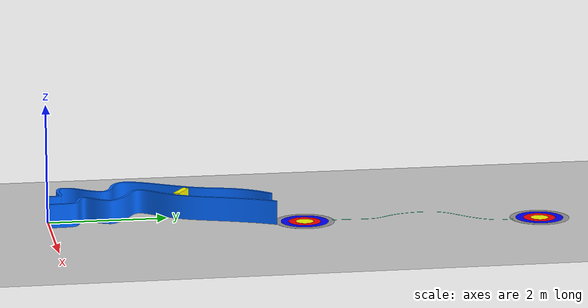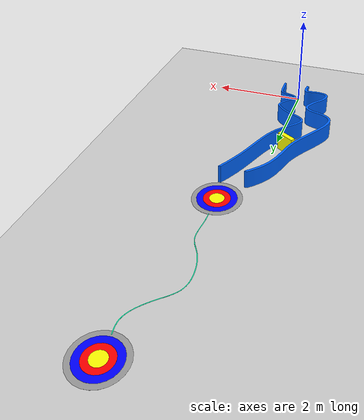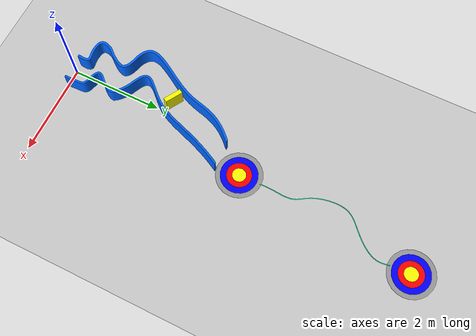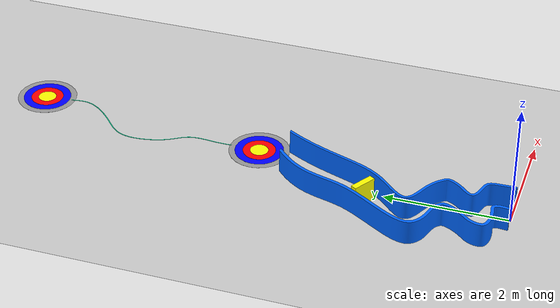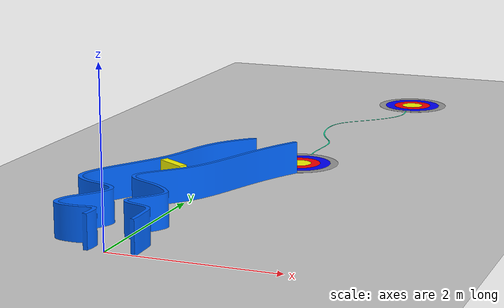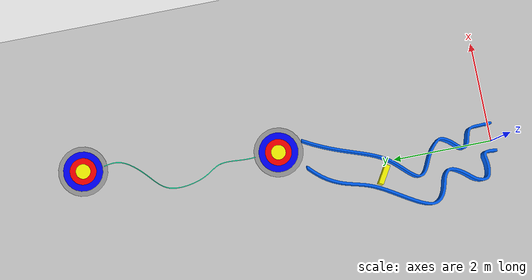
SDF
<sdf version="1.7">
 <world name="default">
  <light name="sun" type="directional">
   <pose>0 0 10 0 -0 0</pose>
   <diffuse>0.8 0.8 0.8 1</diffuse>
   <specular>0.2 0.2 0.2 1</specular>
   <attenuation>
    <range>1000</range>
    <constant>0.9</constant>
    <linear>0.01</linear>
    <quadratic>0.001</quadratic>
   </attenuation>
   <direction>-0.5 0.1 -0.9</direction>
   <spot><inner_angle>0</inner_angle><outer_angle>0</outer_angle><falloff>0</falloff></spot>
  </light>
  <model name="ground_plane">
   <static>1</static>
   <link name="link">
    <collision name="collision">
     <geometry><plane><normal>0 0 1</normal><size>100 100</size></plane></geometry>
     <surface><friction><ode><mu>100</mu><mu2>50</mu2></ode></friction></surface>
    </collision>
    <visual name="visual">
     <cast_shadows>0</cast_shadows>
     <geometry><plane><normal>0 0 1</normal><size>100 100</size></plane></geometry>
     <material>
      <script><uri>file://media/materials/scripts/gazebo.material</uri><name>Gazebo/Grey</name></script>
     </material>
    </visual>
   </link>
  </model>
  <gravity>0 0 -9.8</gravity>
  <magnetic_field>6e-06 2.3e-05 -4.2e-05</magnetic_field>
  <atmosphere type="adiabatic"/>
  <physics type="ode">
   <max_step_size>0.001</max_step_size>
   <real_time_factor>1</real_time_factor>
   <real_time_update_rate>1000</real_time_update_rate>
  </physics>
  <scene><ambient>0.4 0.4 0.4 1</ambient><background>0.7 0.7 0.7 1</background><shadows>1</shadows></scene>
  <spherical_coordinates>
   <surface_model>EARTH_WGS84</surface_model>
   <latitude_deg>0</latitude_deg>
   <longitude_deg>0</longitude_deg>
   <elevation>0</elevation>
   <heading_deg>0</heading_deg>
  </spherical_coordinates>
  <model name="Tunnel">
   <link name="link_0">
    <inertial>
     <mass>1</mass>
     <inertia>
      <ixx>0.166667</ixx>
      <ixy>0</ixy>
      <ixz>0</ixz>
      <iyy>0.166667</iyy>
      <iyz>0</iyz>
      <izz>0.166667</izz>
     </inertia>
    </inertial>
    <gravity>0</gravity>
    <kinematic>1</kinematic>
    <visual name="visual">
     <geometry><mesh><uri>./models/tunnel.stl</uri><scale>1 1 1</scale></mesh></geometry>
     <material>
      <lighting>1</lighting>
      <script><uri>file://media/materials/scripts/gazebo.material</uri><name>Gazebo/Grey</name></script>
      <shader type="pixel"><normal_map>__default__</normal_map></shader>
      <ambient>0 0.4 1 0</ambient>
      <diffuse>0 0.4 1 1</diffuse>
      <specular>0.01 0.01 0.01 1</specular>
      <emissive>0 0 0 1</emissive>
     </material>
    </visual>
    <collision name="collision">
     <geometry><mesh><uri>./models/tunnel.stl</uri><scale>1 1 1</scale></mesh></geometry>
     <surface>
      <friction>
       <ode><mu>1</mu><mu2>1</mu2><fdir1>0 0 0</fdir1><slip1>0</slip1><slip2>0</slip2></ode>
       <torsional>
        <coefficient>1</coefficient>
        <patch_radius>0</patch_radius>
        <surface_radius>0</surface_radius>
        <use_patch_radius>1</use_patch_radius>
        <ode><slip>0</slip></ode>
       </torsional>
      </friction>
      <bounce><restitution_coefficient>0</restitution_coefficient><threshold>1e+06</threshold></bounce>
      <contact>
       <collide_without_contact>0</collide_without_contact>
       <collide_without_contact_bitmask>1</collide_without_contact_bitmask>
       <collide_bitmask>1</collide_bitmask>
       <ode>
        <soft_cfm>0</soft_cfm>
        <soft_erp>0.2</soft_erp>
        <kp>1e+13</kp>
        <kd>1</kd>
        <max_vel>0.01</max_vel>
        <min_depth>0</min_depth>
       </ode>
       <bullet>
        <split_impulse>1</split_impulse>
        <split_impulse_penetration_threshold>-0.01</split_impulse_penetration_threshold>
        <soft_cfm>0</soft_cfm>
        <soft_erp>0.2</soft_erp>
        <kp>1e+13</kp>
        <kd>1</kd>
       </bullet>
      </contact>
     </surface>
    </collision>
   </link>
   <static>0</static>
   <pose>-1.43154 -1.49402 0 0 -0 0</pose>
  </model>
  <model name="Portail">
   <link name="link_1">
    <inertial>
     <mass>1</mass>
     <inertia>
      <ixx>0.166667</ixx>
      <ixy>0</ixy>
      <ixz>0</ixz>
      <iyy>0.166667</iyy>
      <iyz>0</iyz>
      <izz>0.166667</izz>
     </inertia>
    </inertial>
    <pose>0 -0 0 0 0 -0.274014</pose>
    <gravity>0</gravity>
    <kinematic>1</kinematic>
    <visual name="visual">
     <geometry><box><size>0.4 0.1 0.4</size></box></geometry>
     <material>
      <lighting>1</lighting>
      <script><uri>file://media/materials/scripts/gazebo.material</uri><name>Gazebo/Grey</name></script>
      <shader type="pixel"><normal_map>__default__</normal_map></shader>
      <ambient>1 1 0 1</ambient>
      <diffuse>1 1 0 1</diffuse>
      <specular>0.01 0.01 0.01 1</specular>
      <emissive>0 0 0 1</emissive>
     </material>
    </visual>
    <collision name="collision">
     <geometry><box><size>0.4 0.1 0.4</size></box></geometry>
     <surface>
      <friction>
       <ode><mu>1</mu><mu2>1</mu2><fdir1>0 0 0</fdir1><slip1>0</slip1><slip2>0</slip2></ode>
       <torsional>
        <coefficient>1</coefficient>
        <patch_radius>0</patch_radius>
        <surface_radius>0</surface_radius>
        <use_patch_radius>1</use_patch_radius>
        <ode><slip>0</slip></ode>
       </torsional>
      </friction>
      <bounce><restitution_coefficient>0</restitution_coefficient><threshold>1e+06</threshold></bounce>
      <contact>
       <collide_without_contact>0</collide_without_contact>
       <collide_without_contact_bitmask>1</collide_without_contact_bitmask>
       <collide_bitmask>1</collide_bitmask>
       <ode>
        <soft_cfm>0</soft_cfm>
        <soft_erp>0.2</soft_erp>
        <kp>1e+13</kp>
        <kd>1</kd>
        <max_vel>0.01</max_vel>
        <min_depth>0</min_depth>
       </ode>
       <bullet>
        <split_impulse>1</split_impulse>
        <split_impulse_penetration_threshold>-0.01</split_impulse_penetration_threshold>
        <soft_cfm>0</soft_cfm>
        <soft_erp>0.2</soft_erp>
        <kp>1e+13</kp>
        <kd>1</kd>
       </bullet>
      </contact>
     </surface>
    </collision>
   </link>
   <static>0</static>
   <pose>-0.258206 2.27698 0.2 0 0 -0.270185</pose>
  </model>
  <model name="Target">
   <link name="link_4">
    <inertial>
     <mass>1</mass>
     <inertia><ixx>0.145833</ixx><ixy>0</ixy><ixz>0</ixz><iyy>0.145833</iyy><iyz>0</iyz><izz>0.125</izz></inertia>
    </inertial>
    <pose>0 0 -0.00075 0 -0 0</pose>
    <gravity>0</gravity>
    <kinematic>1</kinematic>
    <visual name="visual">
     <geometry><cylinder><radius>0.5</radius><length>0.001</length></cylinder></geometry>
     <material>
      <lighting>1</lighting>
      <script><uri>file://media/materials/scripts/gazebo.material</uri><name>Gazebo/Grey</name></script>
      <shader type="pixel"><normal_map>__default__</normal_map></shader>
      <ambient>0 0 0 1</ambient>
      <diffuse>0 0 0 1</diffuse>
      <specular>0.01 0.01 0.01 1</specular>
      <emissive>0 0 0 1</emissive>
     </material>
    </visual>
   </link>
   <link name="link_4_clone">
    <inertial>
     <mass>1</mass>
     <inertia><ixx>0.145833</ixx><ixy>0</ixy><ixz>0</ixz><iyy>0.145833</iyy><iyz>0</iyz><izz>0.125</izz></inertia>
    </inertial>
    <pose>0 0 -0.00025 0 -0 0</pose>
    <gravity>0</gravity>
    <kinematic>1</kinematic>
    <visual name="visual">
     <geometry><cylinder><radius>0.4</radius><length>0.001</length></cylinder></geometry>
     <material>
      <lighting>1</lighting>
      <script><uri>file://media/materials/scripts/gazebo.material</uri><name>Gazebo/Grey</name></script>
      <shader type="pixel"><normal_map>__default__</normal_map></shader>
      <ambient>0 0 1 1</ambient>
      <diffuse>0 0 1 1</diffuse>
      <specular>0.01 0.01 0.01 1</specular>
      <emissive>0 0 0 1</emissive>
     </material>
    </visual>
   </link>
   <link name="link_4_clone_clone">
    <inertial>
     <mass>1</mass>
     <inertia><ixx>0.145833</ixx><ixy>0</ixy><ixz>0</ixz><iyy>0.145833</iyy><iyz>0</iyz><izz>0.125</izz></inertia>
    </inertial>
    <pose>0 0 0.00025 0 -0 0</pose>
    <kinematic>1</kinematic>
    <visual name="visual">
     <geometry><cylinder><radius>0.27</radius><length>0.001</length></cylinder></geometry>
     <material>
      <lighting>1</lighting>
      <script><uri>file://media/materials/scripts/gazebo.material</uri><name>Gazebo/Grey</name></script>
      <shader type="pixel"><normal_map>__default__</normal_map></shader>
      <ambient>1 0 0 1</ambient>
      <diffuse>1 0 0 1</diffuse>
      <specular>0.01 0.01 0.01 1</specular>
      <emissive>0 0 0 1</emissive>
     </material>
    </visual>
   </link>
   <link name="link_4_clone_clone_clone">
    <inertial>
     <mass>1</mass>
     <inertia><ixx>0.145833</ixx><ixy>0</ixy><ixz>0</ixz><iyy>0.145833</iyy><iyz>0</iyz><izz>0.125</izz></inertia>
    </inertial>
    <pose>0 0 0.00075 0 -0 0</pose>
    <gravity>0</gravity>
    <kinematic>1</kinematic>
    <visual name="visual">
     <geometry><cylinder><radius>0.15</radius><length>0.001</length></cylinder></geometry>
     <material>
      <lighting>1</lighting>
      <script><uri>file://media/materials/scripts/gazebo.material</uri><name>Gazebo/Grey</name></script>
      <shader type="pixel"><normal_map>__default__</normal_map></shader>
      <ambient>1 1 0 1</ambient>
      <diffuse>1 1 0 1</diffuse>
      <specular>0.01 0.01 0.01 1</specular>
      <emissive>0 0 0 1</emissive>
     </material>
    </visual>
   </link>
   <static>0</static>
   <pose>0.601737 4.24447 0 0 -0 0</pose>
  </model>
  <model name="Line">
   <link name="link_0">
    <inertial>
     <mass>1</mass>
     <inertia>
      <ixx>0.166667</ixx>
      <ixy>0</ixy>
      <ixz>0</ixz>
      <iyy>0.166667</iyy>
      <iyz>0</iyz>
      <izz>0.166667</izz>
     </inertia>
    </inertial>
    <gravity>0</gravity>
    <kinematic>1</kinematic>
    <visual name="visual">
     <geometry><mesh><uri>./models/Line1.stl</uri><scale>1 1 1</scale></mesh></geometry>
     <material>
      <lighting>1</lighting>
      <script><uri>file://media/materials/scripts/gazebo.material</uri><name>Gazebo/Grey</name></script>
      <shader type="pixel"><normal_map>__default__</normal_map></shader>
      <ambient>0 1 0.3 1</ambient>
      <diffuse>0 1 0.7 1</diffuse>
      <specular>0.01 0.01 0.01 1</specular>
      <emissive>0 0 0 1</emissive>
     </material>
    </visual>
   </link>
   <static>0</static>
   <pose>0.599519 4.71477 0 0 -0 0</pose>
  </model>
  <model name="Target_0">
   <link name="link_4">
    <inertial>
     <mass>1</mass>
     <inertia><ixx>0.145833</ixx><ixy>0</ixy><ixz>0</ixz><iyy>0.145833</iyy><iyz>0</iyz><izz>0.125</izz></inertia>
    </inertial>
    <pose>0 0 -0.00075 0 -0 0</pose>
    <gravity>0</gravity>
    <kinematic>1</kinematic>
    <visual name="visual">
     <geometry><cylinder><radius>0.5</radius><length>0.001</length></cylinder></geometry>
     <material>
      <lighting>1</lighting>
      <script><uri>file://media/materials/scripts/gazebo.material</uri><name>Gazebo/Grey</name></script>
      <shader type="pixel"><normal_map>__default__</normal_map></shader>
      <ambient>0 0 0 1</ambient>
      <diffuse>0 0 0 1</diffuse>
      <specular>0.01 0.01 0.01 1</specular>
      <emissive>0 0 0 1</emissive>
     </material>
    </visual>
   </link>
   <link name="link_4_clone">
    <inertial>
     <mass>1</mass>
     <inertia><ixx>0.145833</ixx><ixy>0</ixy><ixz>0</ixz><iyy>0.145833</iyy><iyz>0</iyz><izz>0.125</izz></inertia>
    </inertial>
    <pose>0 0 -0.00025 0 -0 0</pose>
    <gravity>0</gravity>
    <kinematic>1</kinematic>
    <visual name="visual">
     <geometry><cylinder><radius>0.4</radius><length>0.001</length></cylinder></geometry>
     <material>
      <lighting>1</lighting>
      <script><uri>file://media/materials/scripts/gazebo.material</uri><name>Gazebo/Grey</name></script>
      <shader type="pixel"><normal_map>__default__</normal_map></shader>
      <ambient>0 0 1 1</ambient>
      <diffuse>0 0 1 1</diffuse>
      <specular>0.01 0.01 0.01 1</specular>
      <emissive>0 0 0 1</emissive>
     </material>
    </visual>
   </link>
   <link name="link_4_clone_clone">
    <inertial>
     <mass>1</mass>
     <inertia><ixx>0.145833</ixx><ixy>0</ixy><ixz>0</ixz><iyy>0.145833</iyy><iyz>0</iyz><izz>0.125</izz></inertia>
    </inertial>
    <pose>0 0 0.00025 0 -0 0</pose>
    <kinematic>1</kinematic>
    <visual name="visual">
     <geometry><cylinder><radius>0.27</radius><length>0.001</length></cylinder></geometry>
     <material>
      <lighting>1</lighting>
      <script><uri>file://media/materials/scripts/gazebo.material</uri><name>Gazebo/Grey</name></script>
      <shader type="pixel"><normal_map>__default__</normal_map></shader>
      <ambient>1 0 0 1</ambient>
      <diffuse>1 0 0 1</diffuse>
      <specular>0.01 0.01 0.01 1</specular>
      <emissive>0 0 0 1</emissive>
     </material>
    </visual>
   </link>
   <link name="link_4_clone_clone_clone">
    <inertial>
     <mass>1</mass>
     <inertia><ixx>0.145833</ixx><ixy>0</ixy><ixz>0</ixz><iyy>0.145833</iyy><iyz>0</iyz><izz>0.125</izz></inertia>
    </inertial>
    <pose>0 0 0.00075 0 -0 0</pose>
    <gravity>0</gravity>
    <kinematic>1</kinematic>
    <visual name="visual">
     <geometry><cylinder><radius>0.15</radius><length>0.001</length></cylinder></geometry>
     <material>
      <lighting>1</lighting>
      <script><uri>file://media/materials/scripts/gazebo.material</uri><name>Gazebo/Grey</name></script>
      <shader type="pixel"><normal_map>__default__</normal_map></shader>
      <ambient>1 1 0 1</ambient>
      <diffuse>1 1 0 1</diffuse>
      <specular>0.01 0.01 0.01 1</specular>
      <emissive>0 0 0 1</emissive>
     </material>
    </visual>
   </link>
   <static>0</static>
   <pose>0.980993 8.17045 0 0 -0 0</pose>
  </model>
 </world>
</sdf>
